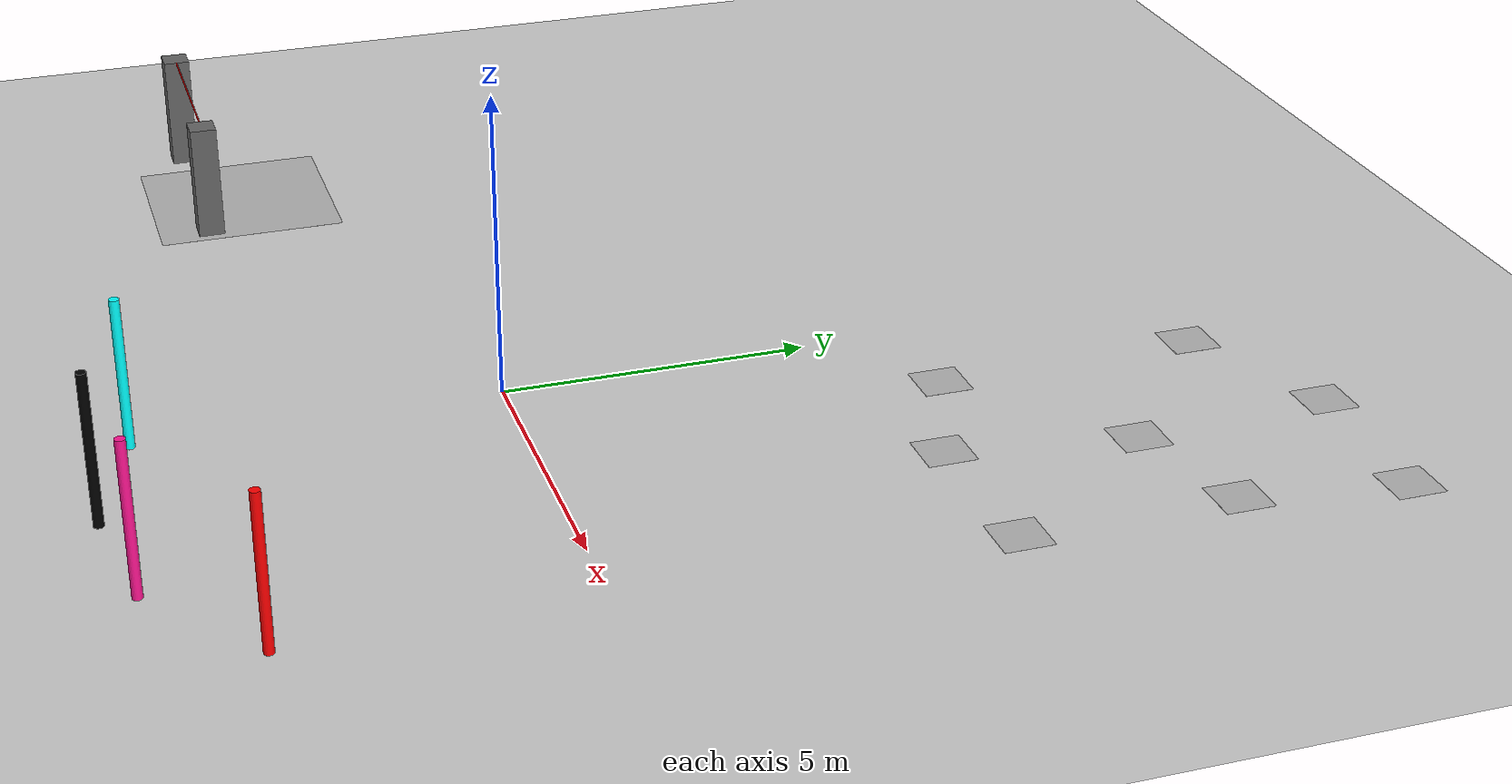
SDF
<?xml version='1.0' encoding='utf-8'?>
<sdf version='1.9'>
  <world name='DesafioDrones_v2.9'>

    <plugin name='gz::sim::systems::Physics' filename='gz-sim-physics-system'/>
    <plugin name='gz::sim::systems::UserCommands' filename='gz-sim-user-commands-system'/>
    <plugin name='gz::sim::systems::SceneBroadcaster' filename='gz-sim-scene-broadcaster-system'/>
    <plugin name='gz::sim::systems::Contact' filename='gz-sim-contact-system'/>

    <physics name='1ms' type='ignored'>
      <max_step_size>0.001</max_step_size>
      <real_time_factor>1</real_time_factor>
      <real_time_update_rate>1000</real_time_update_rate>
    </physics>
    <gravity>0 0 -9.8000000000000007</gravity>
    <magnetic_field>5.5644999999999998e-06 2.2875799999999999e-05 -4.2388400000000002e-05</magnetic_field>
    <atmosphere type='adiabatic'/>

    <scene>
      <ambient>0.400000006 0.400000006 0.400000006 1</ambient>
      <background>0.699999988 0.699999988 0.699999988 1</background>
      <sky/>
      <shadows>true</shadows>
      <grid>false</grid>
    </scene>

    <!--Plataforma base-->
    <model name="ground_plane">
			<include>
        <uri>models/ground_plane</uri>
      </include>
		</model>

    <!-- 2 suportes -->
    <model name="suporte_1">
			<include>
        <uri>models/suporte</uri>
      </include>
      <pose>-11 -3.5 1 0 0 0</pose>
		</model>

    <model name="suporte_2">
			<include>
        <uri>models/suporte</uri>
      </include>
      <pose>-7.55 -3.5 1 0 0 0</pose>
		</model>

    <!-- plataforma + caminho -->
    <model name="figura_caminho">
			<include>
        <uri>models/figure_path</uri>
      </include>
      <pose>-7.55 -1.6 0.001 0 0 0</pose>
		</model>

    <!-- mangueira -->
    <model name="mangueira">
			<include>
        <uri>models/hose</uri>
      </include>
      <pose> -9.275 -3.5 1.99 0 1.5708 0</pose> <!--  girado por 90 graus em rad (pi/2) -->
    </model>

    <!-- 8 figuras -->
    <model name="figure1">
      <include>
        <uri>models/figure1</uri>
      </include>
      <pose>1.8 6.7 0.001 0 0 0</pose>
    </model>

    <model name="figure2">
      <include>
        <uri>models/figure2</uri>
      </include>
      <pose>1.7 11.1 0.001 0 0 0</pose>
    </model>

    <model name="figure3">
      <include>
        <uri>models/figure3</uri>
      </include>
      <pose>3.9 5.9 0.001 0 0 0</pose>
    </model>

    <model name="figure4">
      <include>
        <uri>models/figure4</uri>
      </include>
      <pose>4.4 8.9 0.001 0 0 0</pose>
    </model>

    <model name="figure5">
      <include>
        <uri>models/figure5</uri>
      </include>
      <pose>4.2 12.2 0.001 0 0 0</pose>
    </model>

    <model name="figure6">
      <include>
        <uri>models/figure6</uri>
      </include>
      <pose>6.5 6.0 0.001 0 0 0</pose>
    </model>

    <model name="figure7">
      <include>
        <uri>models/figure7</uri>
      </include>
      <pose>6.5 9.5 0.001 0 0 0</pose>
    </model>

    <model name="figure8">
      <include>
        <uri>models/figure8</uri>
      </include>
      <pose>6.9 12.1 0.001 0 0 0</pose>
    </model>

    <!-- 4 traves -->

    <model name="trave_cyan">
      <include>
        <uri>models/pole_cyan</uri>
      </include>
      <pose>0 -5.8 1.25 0 0 0</pose>
    </model>

    <model name="trave_preta">
      <include>
        <uri>models/pole_black</uri>
      </include>
      <pose>2.2 -6.5 1.25 0 0 0</pose>
    </model>

    <model name="trave_rosa">
      <include>
        <uri>models/pole_pink</uri>
      </include>
      <pose>4.3 -6.2 1.25 0 0 0</pose>
    </model>

    <model name="trave_vermelha">
      <include>
        <uri>models/pole_red</uri>
      </include>
      <pose>6.2 -4.7 1.25 0 0 0</pose>
    </model>

    <!-- luz -->
    <light name='sun' type='directional'>
      <pose>0 0 10 0 0 0</pose>
      <cast_shadows>true</cast_shadows>
      <intensity>1</intensity>
      <direction>-0.5 0.10000000000000001 -0.90000000000000002</direction>
      <diffuse>0.800000012 0.800000012 0.800000012 1</diffuse>
      <specular>0.200000003 0.200000003 0.200000003 1</specular>
      <attenuation>
        <range>1000</range>
        <linear>0.01</linear>
        <constant>0.90000000000000002</constant>
        <quadratic>0.001</quadratic>
      </attenuation>
      <spot>
        <inner_angle>0</inner_angle>
        <outer_angle>0</outer_angle>
        <falloff>0</falloff>
      </spot>
    </light>

  </world>
</sdf>

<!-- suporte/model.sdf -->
<sdf version='1.9'>
<model name='box'>
  <pose>0 0 0 0 0 0</pose>
  <link name='box_link'>
    <collision name='box_collision'>
      <geometry>
        <box>
          <size>0.4 0.4 2</size>
        </box>
      </geometry>
      <surface>
        <friction>
          <ode/>
        </friction>
        <bounce/>
        <contact/>
      </surface>
    </collision>
    <visual name='visual'>
      <geometry>
        <box>
          <size>0.45 0.45 2</size>
        </box>
      </geometry>
      <material>
        <ambient>0.25 0.25 0.25 1.0</ambient>
        <diffuse>0.4 0.4 0.4 1.0</diffuse>
        <specular>0.774597 0.774597 0.774597 1.0</specular>
      </material>
    </visual>
    <pose>0 0 0 0 0 0</pose>
    <enable_wind>false</enable_wind>
  </link>
  <static>true</static>
  <self_collide>false</self_collide>
</model>
</sdf>

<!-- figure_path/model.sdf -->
<sdf version='1.9'>
<model name='figure'>
  <pose>0 0 0 0 0 0</pose>
  <static>true</static>
  <self_collide>false</self_collide>
  <link name='box_link'>
    <collision name='box_collision'>
      <geometry>
        <box>
          <size>0.8 0.8 0.002</size>
        </box>
      </geometry>
      <surface>
        <friction>
          <ode/>
        </friction>
        <bounce/>
        <contact/>
      </surface>
    </collision>
    <visual name='visual'>
      <pose>0 0 -0.001 0 0 0</pose>
      <geometry>
        <box>
          <size>0.8 0.8 0.001</size>
        </box>
      </geometry>
      <material>
        <ambient>1 1 1 1</ambient> <!-- white -->
        <diffuse>1 1 1 1</diffuse>
        <specular>1 1 1 1</specular>
        <emissive>1 1 1 1</emissive>
      </material>
      <cast_shadows>false</cast_shadows>
    </visual>
    <visual name='image'>
      <pose> -1.2 -1.2 0.001 0 0 0</pose>
      <geometry>
        <box>
          <size>3.2 3.2 0.001</size>
        </box>
      </geometry>
      <material>
        <diffuse>0.7 0.7 0.7 1</diffuse>
        <specular>1 1 1 1</specular>
        <pbr>
          <metal>
            <albedo_map>materials/textures/bola_azul_caminho.png</albedo_map>   <!-- image-->
            <metalness> 0 </metalness>
            <roughness>1</roughness>
          </metal>
        </pbr>
      </material>
    <cast_shadows>false</cast_shadows>
    </visual>
    <enable_wind>false</enable_wind>
  </link>
</model>
</sdf>

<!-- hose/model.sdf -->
<sdf version='1.9'>
  <model name='pole'>
    <pose>0 0 0 0 0 0</pose>
    <link name='cylinder_link'>
      <collision name='cylinder_collision'>
        <geometry>
            <cylinder>
              <radius>0.0127</radius>
              <length>3</length>
            </cylinder>
          </geometry>
        <surface>
          <friction>
            <ode/>
          </friction>
          <bounce/>
          <contact/>
        </surface>
      </collision>
      <visual name='cylinder_visual'>
          <geometry>
            <cylinder>
              <radius>0.0127</radius>
              <length>3</length>
            </cylinder>
          </geometry>
          <material>
          <ambient>1 0 0 1</ambient>
          <diffuse>1 0 0 1</diffuse>
          <specular>0.5 0.5 0.5 1</specular>
          </material>
        </visual>
      <pose>0 0 0 0 0 0</pose>
      <enable_wind>false</enable_wind>
    </link>
    <static>true</static>
    <self_collide>false</self_collide>
  </model>
</sdf>

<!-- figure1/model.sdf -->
<sdf version='1.9'>
<model name='figure'>
  <pose>0 0 0 0 0 0</pose>
  <static>true</static>
  <self_collide>false</self_collide>
  <link name='box_link'>
    <collision name='box_collision'>
      <geometry>
        <box>
          <size>0.8 0.8 0.002</size>
        </box>
      </geometry>
      <surface>
        <friction>
          <ode/>
        </friction>
        <bounce/>
        <contact/>
      </surface>
    </collision>
    <visual name='visual'>
      <pose>0 0 -0.001 0 0 0</pose>
      <geometry>
        <box>
          <size>0.8 0.8 0.001</size>
        </box>
      </geometry>
      <material>
        <ambient>1 1 1 1</ambient> <!-- white -->
        <diffuse>1 1 1 1</diffuse>
        <specular>1 1 1 1</specular>
        <emissive>1 1 1 1</emissive>
      </material>
      <cast_shadows>false</cast_shadows>
    </visual>
    <visual name='image'>
      <pose>0 0 0.001 0 0 0</pose>
      <geometry>
        <box>
          <size>0.8 0.8 0.001</size>
        </box>
      </geometry>
      <material>
        <diffuse>0.7 0.7 0.7 1</diffuse>
        <specular>1 1 1 1</specular>
        <pbr>
          <metal>
            <albedo_map>materials/textures/bola_azul.png</albedo_map>   <!-- image-->
            <metalness> 0 </metalness>
            <roughness>1</roughness>
          </metal>
        </pbr>
      </material>
      <cast_shadows>false</cast_shadows>
    </visual>
    <enable_wind>false</enable_wind>
  </link>
</model>
</sdf>

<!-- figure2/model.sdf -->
<sdf version='1.9'>
<model name='figure'>
  <pose>0 0 0 0 0 0</pose>
  <static>true</static>
  <self_collide>false</self_collide>
  <link name='box_link'>
    <collision name='box_collision'>
      <geometry>
        <box>
          <size>0.8 0.8 0.002</size>
        </box>
      </geometry>
      <surface>
        <friction>
          <ode/>
        </friction>
        <bounce/>
        <contact/>
      </surface>
    </collision>
    <visual name='visual'>
      <pose>0 0 -0.001 0 0 0</pose>
      <geometry>
        <box>
          <size>0.8 0.8 0.001</size>
        </box>
      </geometry>
      <material>
        <ambient>1 1 1 1</ambient> <!-- white -->
        <diffuse>1 1 1 1</diffuse>
        <specular>1 1 1 1</specular>
        <emissive>1 1 1 1</emissive>
      </material>
      <cast_shadows>false</cast_shadows>
    </visual>
    <visual name='image'>
      <pose>0 0 0.001 0 0 0</pose>
      <geometry>
        <box>
          <size>0.8 0.8 0.001</size>
        </box>
      </geometry>
      <material>
        <diffuse>0.7 0.7 0.7 1</diffuse>
        <specular>1 1 1 1</specular>
        <pbr>
          <metal>
            <albedo_map>materials/textures/quadrado_marrom.png</albedo_map>   <!-- image-->
            <metalness> 0 </metalness>
            <roughness>1</roughness>
          </metal>
        </pbr>
      </material>
      <cast_shadows>false</cast_shadows>
    </visual>
    <enable_wind>false</enable_wind>
  </link>
</model>
</sdf>

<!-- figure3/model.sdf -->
<sdf version='1.9'>
<model name='figure'>
  <pose>0 0 0 0 0 0</pose>
  <static>true</static>
  <self_collide>false</self_collide>
  <link name='box_link'>
    <collision name='box_collision'>
      <geometry>
        <box>
          <size>0.8 0.8 0.002</size>
        </box>
      </geometry>
      <surface>
        <friction>
          <ode/>
        </friction>
        <bounce/>
        <contact/>
      </surface>
    </collision>
    <visual name='visual'>
      <pose>0 0 -0.001 0 0 0</pose>
      <geometry>
        <box>
          <size>0.8 0.8 0.001</size>
        </box>
      </geometry>
      <material>
        <ambient>1 1 1 1</ambient> <!-- white -->
        <diffuse>1 1 1 1</diffuse>
        <specular>1 1 1 1</specular>
        <emissive>1 1 1 1</emissive>
      </material>
      <cast_shadows>false</cast_shadows>
    </visual>
    <visual name='image'>
      <pose>0 0 0.001 0 0 0</pose>
      <geometry>
        <box>
          <size>0.8 0.8 0.001</size>
        </box>
      </geometry>
      <material>
        <diffuse>0.7 0.7 0.7 1</diffuse>
        <specular>1 1 1 1</specular>
        <pbr>
          <metal>
            <albedo_map>materials/textures/triangulo_azul.png</albedo_map>   <!-- image-->
            <metalness> 0 </metalness>
            <roughness>1</roughness>
          </metal>
        </pbr>
      </material>
      <cast_shadows>false</cast_shadows>
    </visual>
    <enable_wind>false</enable_wind>
  </link>
</model>
</sdf>

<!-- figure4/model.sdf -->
<sdf version='1.9'>
<model name='figure'>
  <pose>0 0 0 0 0 0</pose>
  <static>true</static>
  <self_collide>false</self_collide>
  <link name='box_link'>
    <collision name='box_collision'>
      <geometry>
        <box>
          <size>0.8 0.8 0.002</size>
        </box>
      </geometry>
      <surface>
        <friction>
          <ode/>
        </friction>
        <bounce/>
        <contact/>
      </surface>
    </collision>
    <visual name='visual'>
      <pose>0 0 -0.0005 0 0 0</pose>
      <geometry>
        <box>
          <size>0.8 0.8 0.001</size>
        </box>
      </geometry>
      <material>
        <ambient>1 1 1 1</ambient> <!-- white -->
        <diffuse>1 1 1 1</diffuse>
        <specular>1 1 1 1</specular>
        <emissive>1 1 1 1</emissive>
      </material>
      <cast_shadows>false</cast_shadows>
    </visual>
    <visual name='image'>
      <pose>0 0 0.0005 0 0 0</pose>
      <geometry>
        <box>
          <size>0.8 0.8 0.001</size>
        </box>
      </geometry>
      <material>
        <diffuse>0.7 0.7 0.7 1</diffuse>
        <specular>1 1 1 1</specular>
        <pbr>
          <metal>
            <albedo_map>materials/textures/hexagono_vermelho.png</albedo_map>   <!-- image-->
            <metalness> 0 </metalness>
            <roughness>1</roughness>
          </metal>
        </pbr>
      </material>
      <cast_shadows>false</cast_shadows>
    </visual>
    <enable_wind>false</enable_wind>
  </link>
</model>
</sdf>

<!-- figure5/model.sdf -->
<sdf version='1.9'>
<model name='figure'>
  <pose>0 0 0 0 0 0</pose>
  <static>true</static>
  <self_collide>false</self_collide>
  <link name='box_link'>
    <collision name='box_collision'>
      <geometry>
        <box>
          <size>0.8 0.8 0.002</size>
        </box>
      </geometry>
      <surface>
        <friction>
          <ode/>
        </friction>
        <bounce/>
        <contact/>
      </surface>
    </collision>
    <visual name='visual'>
      <pose>0 0 -0.0005 0 0 0</pose>
      <geometry>
        <box>
          <size>0.8 0.8 0.001</size>
        </box>
      </geometry>
      <material>
        <ambient>1 1 1 1</ambient> <!-- white -->
        <diffuse>1 1 1 1</diffuse>
        <specular>1 1 1 1</specular>
        <emissive>1 1 1 1</emissive>
      </material>
      <cast_shadows>false</cast_shadows>
    </visual>
    <visual name='image'>
      <pose>0 0 0.0005 0 0 0</pose>
      <geometry>
        <box>
          <size>0.8 0.8 0.001</size>
        </box>
      </geometry>
      <material>
        <diffuse>0.7 0.7 0.7 1</diffuse>
        <specular>1 1 1 1</specular>
        <pbr>
          <metal>
            <albedo_map>materials/textures/pentagono_vermelho.png</albedo_map>   <!-- image-->
            <metalness> 0 </metalness>
            <roughness>1</roughness>
          </metal>
        </pbr>
      </material>
      <cast_shadows>false</cast_shadows>
    </visual>
    <enable_wind>false</enable_wind>
  </link>
</model>
</sdf>

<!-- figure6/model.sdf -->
<sdf version='1.9'>
<model name='figure'>
  <pose>0 0 0 0 0 0</pose>
  <static>true</static>
  <self_collide>false</self_collide>
  <link name='box_link'>
    <collision name='box_collision'>
      <geometry>
        <box>
          <size>0.8 0.8 0.002</size>
        </box>
      </geometry>
      <surface>
        <friction>
          <ode/>
        </friction>
        <bounce/>
        <contact/>
      </surface>
    </collision>
    <visual name='visual'>
      <pose>0 0 -0.0005 0 0 0</pose>
      <geometry>
        <box>
          <size>0.8 0.8 0.001</size>
        </box>
      </geometry>
      <material>
        <ambient>1 1 1 1</ambient> <!-- white -->
        <diffuse>1 1 1 1</diffuse>
        <specular>1 1 1 1</specular>
        <emissive>1 1 1 1</emissive>
      </material>
      <cast_shadows>false</cast_shadows>
    </visual>
    <visual name='image'>
      <pose>0 0 0.0005 0 0 0</pose>
      <geometry>
        <box>
          <size>0.8 0.8 0.001</size>
        </box>
      </geometry>
      <material>
        <diffuse>0.7 0.7 0.7 1</diffuse>
        <specular>1 1 1 1</specular>
        <pbr>
          <metal>
            <albedo_map>materials/textures/estrela_verde.png</albedo_map>   <!-- image-->
            <metalness> 0 </metalness>
            <roughness>1</roughness>
          </metal>
        </pbr>
      </material>
      <cast_shadows>false</cast_shadows>
    </visual>
    <enable_wind>false</enable_wind>
  </link>
</model>
</sdf>

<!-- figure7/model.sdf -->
<sdf version='1.9'>
<model name='figure'>
  <pose>0 0 0 0 0 0</pose>
  <static>true</static>
  <self_collide>false</self_collide>
  <link name='box_link'>
    <collision name='box_collision'>
      <geometry>
        <box>
          <size>0.8 0.8 0.002</size>
        </box>
      </geometry>
      <surface>
        <friction>
          <ode/>
        </friction>
        <bounce/>
        <contact/>
      </surface>
    </collision>
    <visual name='visual'>
      <pose>0 0 -0.0005 0 0 0</pose>
      <geometry>
        <box>
          <size>0.8 0.8 0.001</size>
        </box>
      </geometry>
      <material>
        <ambient>1 1 1 1</ambient> <!-- white -->
        <diffuse>1 1 1 1</diffuse>
        <specular>1 1 1 1</specular>
        <emissive>1 1 1 1</emissive>
      </material>
      <cast_shadows>false</cast_shadows>
    </visual>
    <visual name='image'>
      <pose>0 0 0.0005 0 0 0</pose>
      <geometry>
        <box>
          <size>0.8 0.8 0.001</size>
        </box>
      </geometry>
      <material>
        <diffuse>0.7 0.7 0.7 1</diffuse>
        <specular>1 1 1 1</specular>
        <pbr>
          <metal>
            <albedo_map>materials/textures/cruz_rosa.png</albedo_map>   <!-- image-->
            <metalness> 0 </metalness>
            <roughness>1</roughness>
          </metal>
        </pbr>
      </material>
      <cast_shadows>false</cast_shadows>
    </visual>
    <enable_wind>false</enable_wind>
  </link>
</model>
</sdf>

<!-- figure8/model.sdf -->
<sdf version='1.9'>
<model name='figure'>
  <pose>0 0 0 0 0 0</pose>
  <static>true</static>
  <self_collide>false</self_collide>
  <link name='box_link'>
    <collision name='box_collision'>
      <geometry>
        <box>
          <size>0.8 0.8 0.002</size>
        </box>
      </geometry>
      <surface>
        <friction>
          <ode/>
        </friction>
        <bounce/>
        <contact/>
      </surface>
    </collision>
    <visual name='visual'>
      <pose>0 0 -0.0005 0 0 0</pose>
      <geometry>
        <box>
          <size>0.8 0.8 0.001</size>
        </box>
      </geometry>
      <material>
        <ambient>1 1 1 1</ambient> <!-- white -->
        <diffuse>1 1 1 1</diffuse>
        <specular>1 1 1 1</specular>
        <emissive>1 1 1 1</emissive>
      </material>
      <cast_shadows>false</cast_shadows>
    </visual>
    <visual name='image'>
      <pose>0 0 0.0005 0 0 0</pose>
      <geometry>
        <box>
          <size>0.8 0.8 0.001</size>
        </box>
      </geometry>
      <material>
        <diffuse>0.7 0.7 0.7 1</diffuse>
        <specular>1 1 1 1</specular>
        <pbr>
          <metal>
            <albedo_map>materials/textures/poligono_laranja.png</albedo_map>   <!-- image-->
            <metalness> 0 </metalness>
            <roughness>1</roughness>
          </metal>
        </pbr>
      </material>
      <cast_shadows>false</cast_shadows>
    </visual>
    <enable_wind>false</enable_wind>
  </link>
</model>
</sdf>

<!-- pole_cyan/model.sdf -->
<sdf version='1.9'>
  <model name='pole'>
    <pose>0 0 0 0 0 0</pose>
    <link name='cylinder_link'>
      <collision name='cylinder_collision'>
        <geometry>
            <cylinder>
              <radius>0.08</radius>
              <length>2.5</length>
            </cylinder>
          </geometry>
        <surface>
          <friction>
            <ode/>
          </friction>
          <bounce/>
          <contact/>
        </surface>
      </collision>
      <visual name='cylinder_visual'>
          <geometry>
            <cylinder>
              <radius>0.08</radius>
              <length>2.5</length>
            </cylinder>
          </geometry>
          <material>
          <ambient>0 1 1 1</ambient>
          <diffuse>0 1 1 1</diffuse>
          <specular>0.5 0.5 0.5 1</specular>
        </material>
        </visual>
      <pose>0 0 0 0 0 0</pose>
      <enable_wind>false</enable_wind>
    </link>
    <static>true</static>
    <self_collide>false</self_collide>
  </model>
</sdf>

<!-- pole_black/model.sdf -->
<sdf version='1.9'>
  <model name='pole'>
    <pose>0 0 0 0 0 0</pose>
    <link name='cylinder_link'>
      <collision name='cylinder_collision'>
        <geometry>
            <cylinder>
              <radius>0.08</radius>
              <length>2.5</length>
            </cylinder>
          </geometry>
        <surface>
          <friction>
            <ode/>
          </friction>
          <bounce/>
          <contact/>
        </surface>
      </collision>
      <visual name='cylinder_visual'>
          <geometry>
            <cylinder>
              <radius>0.08</radius>
              <length>2.5</length>
            </cylinder>
          </geometry>
          <material>
          <ambient>0 0 0 1</ambient>
          <diffuse>0 0 0 1</diffuse>
          <specular>0.5 0.5 0.5 1</specular>
        </material>
        </visual>
      <pose>0 0 0 0 0 0</pose>
      <enable_wind>false</enable_wind>
    </link>
    <static>true</static>
    <self_collide>false</self_collide>
  </model>
</sdf>

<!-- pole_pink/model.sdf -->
<sdf version='1.9'>
  <model name='pole'>
    <pose>0 0 0 0 0 0</pose>
    <link name='cylinder_link'>
      <collision name='cylinder_collision'>
        <geometry>
            <cylinder>
              <radius>0.08</radius>
              <length>2.5</length>
            </cylinder>
          </geometry>
        <surface>
          <friction>
            <ode/>
          </friction>
          <bounce/>
          <contact/>
        </surface>
      </collision>
      <visual name='cylinder_visual'>
          <geometry>
            <cylinder>
              <radius>0.08</radius>
              <length>2.5</length>
            </cylinder>
          </geometry>
          <material>
          <ambient>1 0.078 0.576 1</ambient>
          <diffuse>1 0.078 0.576 1</diffuse>
          <specular>0.5 0.5 0.5 1</specular>
        </material>
        </visual>
      <pose>0 0 0 0 0 0</pose>
      <enable_wind>false</enable_wind>
    </link>
    <static>true</static>
    <self_collide>false</self_collide>
  </model>
</sdf>

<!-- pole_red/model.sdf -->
<sdf version='1.9'>
  <model name='pole'>
    <pose>0 0 0 0 0 0</pose>
    <link name='cylinder_link'>
      <collision name='cylinder_collision'>
        <geometry>
            <cylinder>
              <radius>0.08</radius>
              <length>2.5</length>
            </cylinder>
          </geometry>
        <surface>
          <friction>
            <ode/>
          </friction>
          <bounce/>
          <contact/>
        </surface>
      </collision>
      <visual name='cylinder_visual'>
          <geometry>
            <cylinder>
              <radius>0.08</radius>
              <length>2.5</length>
            </cylinder>
          </geometry>
          <material>
          <ambient>1 0 0 1</ambient>
          <diffuse>1 0 0 1</diffuse>
          <specular>0.5 0.5 0.5 1</specular>
        </material>
        </visual>
      <pose>0 0 0 0 0 0</pose>
      <enable_wind>false</enable_wind>
    </link>
    <static>true</static>
    <self_collide>false</self_collide>
  </model>
</sdf>
